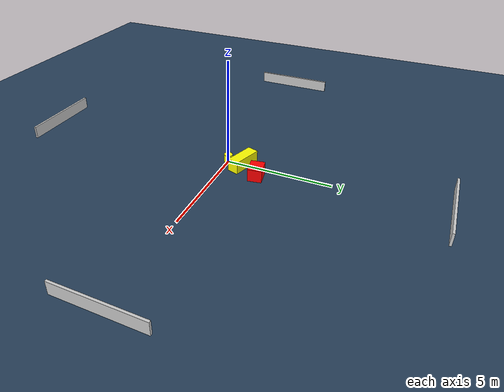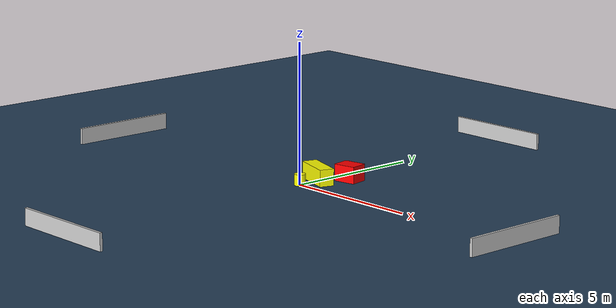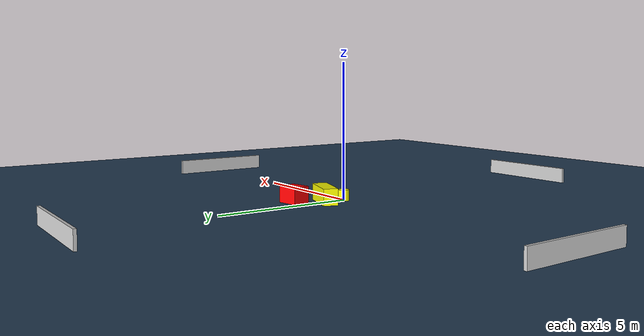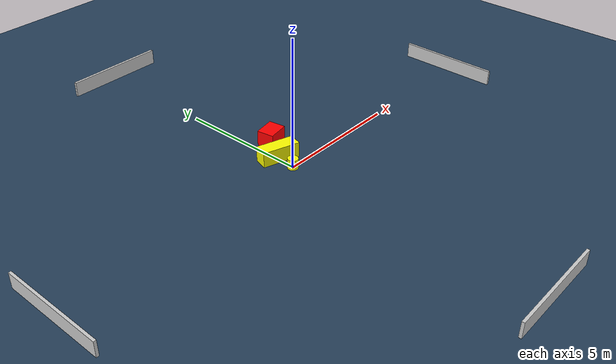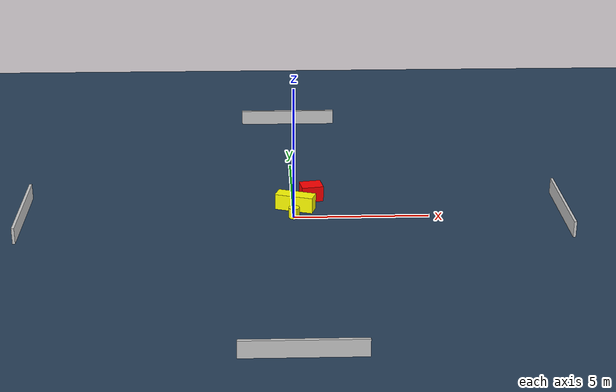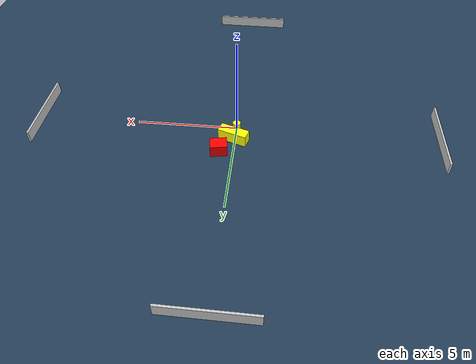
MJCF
<?xml version="1.0" ?>
<mujoco model="generated_environment">
  <option timestep="0.01" integrator="RK4" cone="elliptic"/>
  <default>
    <geom density="1"/>
  </default>
  <asset>
    <texture builtin="gradient" height="3072" name="skybox" rgb1="0.3 0.5 0.7" rgb2="0 0 0" type="skybox" width="512"/>
    <texture builtin="checker" height="300" name="groundplane" rgb1="0.2 0.3 0.4" rgb2="0.1 0.2 0.3" type="2d" width="300"/>
    <material name="groundplane" reflectance="0.2" texrepeat="5 5" texture="groundplane"/>
  </asset>
  <worldbody>
    <light dir="0 0 -1" directional="true" pos="0 0 1.5"/>
    <geom condim="3" friction="0.5 0.005 0.001" material="groundplane" name="floor" pos="0 0 0" size="0 0 0.05" type="plane"/>
    <body name="walls">
      <geom name="wall_1" condim="4" pos="-10.0 0.0 0.3" rgba="0.800000011920929 0.800000011920929 0.800000011920929 1.0" size="0.05 2.0 0.3" type="box"/>
      <geom name="wall_2" condim="4" pos="10.0 0.0 0.3" rgba="0.800000011920929 0.800000011920929 0.800000011920929 1.0" size="0.05 2.0 0.3" type="box"/>
      <geom name="wall_3" condim="4" pos="0.0 -10.0 0.3" rgba="0.800000011920929 0.800000011920929 0.800000011920929 1.0" size="2.0 0.05 0.3" type="box"/>
      <geom name="wall_4" condim="4" pos="0.0 10.0 0.3" rgba="0.800000011920929 0.800000011920929 0.800000011920929 1.0" size="2.0 0.05 0.3" type="box"/>
    </body>
    <body name="robot">
      <joint name="joint_x" type="slide" pos="0 0 0" axis="1 0 0"/>
      <joint name="joint_y" type="slide" pos="0 0 0" axis="0 1 0"/>
      <geom name="robot" type="cylinder" pos="0.0 0.0 0.2" size="0.2 0.2 0.0" mass="5.0" friction="1.0 0.005 0.0001" condim="4" rgba="1.0 1.0 0.0 1.0"/>
    </body>
    <body name="obstacle_1_movable">
      <geom name="obstacle_1_movable" condim="4" pos="0.07385751287620153 0.780987958351486 0.3" euler="0 0 342.03935524901516" friction="0.0 0.005 0.001" rgba="1.0 1.0 0.0 1.0" size="0.7236882659767623 0.264797358673537 0.3" type="box" mass="0.1"/>
      <joint type="free"/>
    </body>
    <body name="obstacle_2_static">
      <geom name="obstacle_2_static" condim="4" pos="0.7007951444273093 1.6942112633828186 0.3" euler="0 0 189.5137460760284" friction="0.0 0.005 0.001" rgba="1.0 0.0 0.0 1.0" size="0.4107490426863679 0.32717211228248066 0.3" type="box"/>
    </body>
  </worldbody>
  <actuator>
    <motor name="actuator_x" joint="joint_x" gear="1" ctrlrange="-1 1"/>
    <motor name="actuator_y" joint="joint_y" gear="1" ctrlrange="-1 1"/>
  </actuator>
</mujoco>
